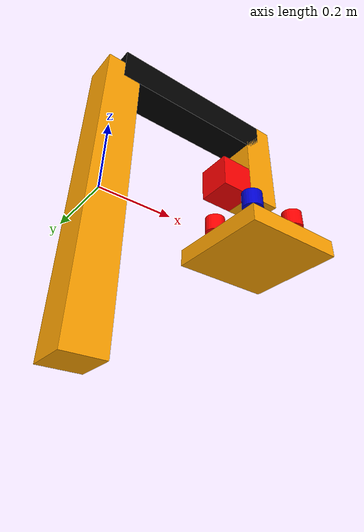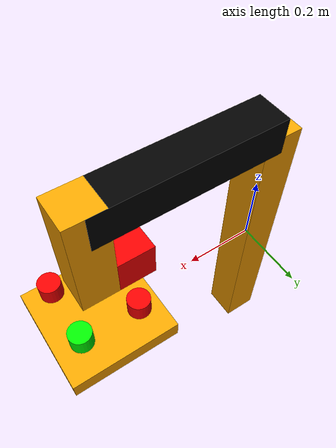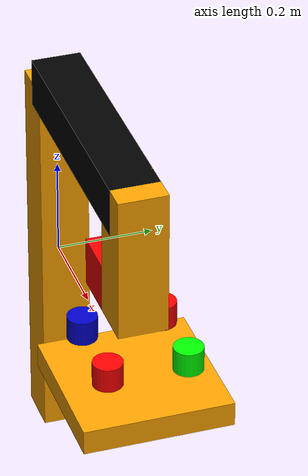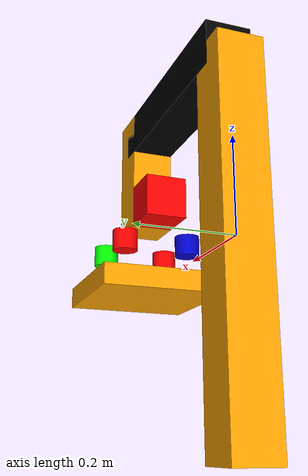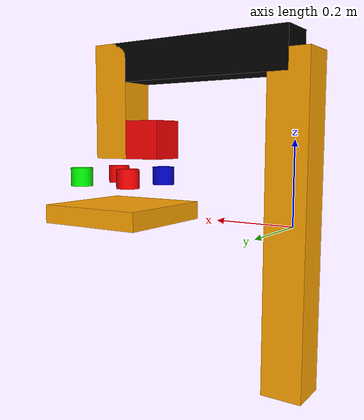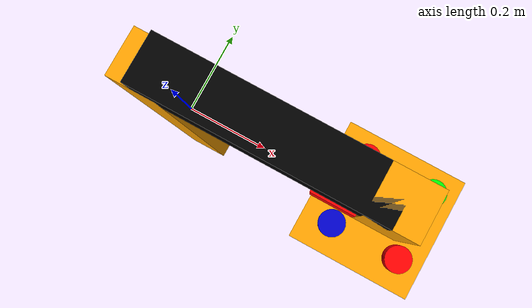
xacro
<?xml version="1.0"?>
<robot name="pinak_robot" xmlns:xacro="http://ros.org/wiki/xacro">

  <xacro:property name="width" value="0.2" />
  <xacro:property name="leglen" value="0.6" />
  <xacro:property name="polelen" value="0.2" />
  <xacro:property name="bodylen" value="0.6" />
  <xacro:property name="baselen" value="0.4" />
  <xacro:property name="wheeldiam" value="0.07" />
  <xacro:property name="pi" value="3.1415" />

  <xacro:include filename="$(find urdf_basic)/urdf/pinak.gazebo" />

  <material name="blue">
    <color rgba="0 0 0.8 1"/>
  </material>

  <material name="red">
    <color rgba="1 0 0 1"/>
  </material>

  <material name="">
    <color rgba="1 0 0 1"/>
  </material>

  <material name="green">
    <color rgba="0 1 0 1"/>
  </material>

  <material name="orange">
    <color rgba="1 0.64 0 1"/>
  </material>

  <material name="black">
    <color rgba="0 0 0 1"/>
  </material>

  <material name="white">
    <color rgba="1 1 1 1"/>
  </material>

  <xacro:macro name="default_inertial" params="mass">
    <inertial>
      <mass value="${mass}" />
      <inertia ixx="0.1" ixy="0.0" ixz="0.0" iyy="0.1" iyz="0.0" izz="0.1" />
    </inertial>
  </xacro:macro>

  <link name = "world"/>
  <link name="base_link">
    <visual>
      <geometry>
        <box size = "0.1 0.1 0.8"/>
      </geometry>
      <origin xyz="0 0.0 0" />

      <material name="orange"/>
    </visual>
    <collision>
      <geometry>
        <box size = "0.1 0.1 0.8"/>
      </geometry>
    </collision>
    <xacro:default_inertial mass="100"/>
  </link>
  <link name="link1">
    <visual>
      <geometry>
        <box size = "0.5 0.1 0.1"/>
      </geometry>
      <origin xyz="0.25 0.0 0" />
      <material name="black"/>
    </visual>
    <collision>
      <geometry>
        <box size = "0.5 0.1 0.1"/>
      </geometry>
    </collision>
    <xacro:default_inertial mass="30"/>
  </link>
  <link name="link2">
    <visual>
      <geometry>
        <box size = "0.1 0.1 0.3"/>
      </geometry>
      <origin xyz="0 0 -0.1" />
      <material name="orange"/>
    </visual>
    <collision>
      <geometry>
        <box size = "0 0.1 0.3"/>
      </geometry>
    </collision>
    <xacro:default_inertial mass="40"/>
  </link>

  <link name="camera_link">
    <visual>
      <geometry>
        <box size = "0.1 0.1 0.1"/>
      </geometry>
      <origin xyz="0 0 -0.1" />
      <material name="red"/>
    </visual>
    <collision>
      <geometry>
        <box size = "0.1 0.1 0.1"/>
      </geometry>
    </collision>
    <xacro:default_inertial mass="20"/>
  </link>

  <link name="obj_square">
    <visual>
      <geometry>
        <box size = "0.3 0.3 0.05"/>
      </geometry>

      <material name="orange"/>
    </visual>
    <collision>
      <geometry>
        <box size = "0.3 0.3 0.1"/>
      </geometry>
    </collision>
    <xacro:default_inertial mass="200"/>
  </link>

  <link name="obj_circle1">
  <visual>
    <geometry>
      <cylinder length = '0.05' radius = '0.03'/>
    </geometry>

    <material name="red"/>
  </visual>
  <collision>
    <geometry>
      <cylinder length = '0.05' radius = '0.03'/>
    </geometry>
  </collision>
  <xacro:default_inertial mass="1"/>
  </link>

  <link name="obj_circle2">
  <visual>
    <geometry>
      <cylinder length = '0.05' radius = '0.03'/>
    </geometry>

    <material name="blue"/>
  </visual>
  <collision>
    <geometry>
      <cylinder length = '0.05' radius = '0.03'/>
    </geometry>
  </collision>
  <xacro:default_inertial mass="1"/>
  </link>

  <link name="obj_circle3">
    <visual>
      <geometry>
        <cylinder length = '0.05' radius = '0.03'/>
      </geometry>

      <material name="green"/>
    </visual>
    <collision>
      <geometry>
        <cylinder length = '0.05' radius = '0.03'/>
      </geometry>
    </collision>
    <xacro:default_inertial mass="1"/>
  </link>

  <link name="obj_circle4">
    <visual>
      <geometry>
        <cylinder length = '0.05' radius = '0.03'/>
      </geometry>

      <material name="red"/>
    </visual>
    <collision>
      <geometry>
        <cylinder length = '0.05' radius = '0.03'/>
      </geometry>
    </collision>
    <xacro:default_inertial mass="1"/>
  </link>

  <joint name="joint0" type="fixed">
    <parent link="world"/>
    <child link="base_link"/>
  </joint>

  <joint name="base_to_link" type="fixed">
      <parent link="base_link"/>
      <child link="link1"/>
      <origin xyz="0 0 0.4" />
    </joint>
  <joint name="link1_to_link2" type="fixed">
      <parent link="link1"/>
      <child link="link2"/>
      <origin xyz="0.5 0 0" />
    </joint>
  <joint name="link2_to_camera" type="fixed">
      <parent link="link2"/>
      <child link="camera_link"/>
      <origin xyz="0 0 -0.2" rpy = "0 ${pi/2} 0" />
    </joint>
    <joint name="base_to_obj" type="fixed">
      <parent link="world"/>
      <child link="obj_square"/>
      <origin xyz="0.5 0 0" />
    </joint>
    <joint name="obj_to_c1" type="fixed">
      <parent link="obj_square"/>
      <child link="obj_circle1"/>
      <origin xyz="-0.08 0.08 0.1" />
    </joint>
     <joint name="obj_to_c2" type="fixed">
      <parent link="obj_square"/>
      <child link="obj_circle2"/>
      <origin xyz="-0.08 -0.08 0.1" />
    </joint>
     <joint name="obj_to_c3" type="fixed">
      <parent link="obj_square"/>
      <child link="obj_circle3"/>
      <origin xyz="0.08 0.08 0.1" />
    </joint>
    <joint name="obj_to_c4" type="fixed">
      <parent link="obj_square"/>
      <child link="obj_circle4"/>
      <origin xyz="0.08 -0.08 0.1" />
    </joint>

</robot>
